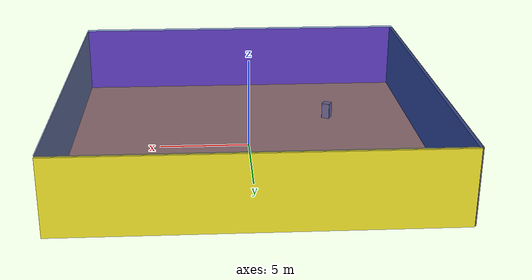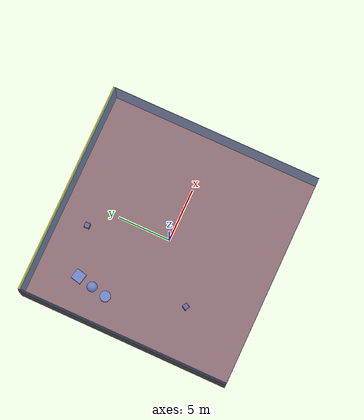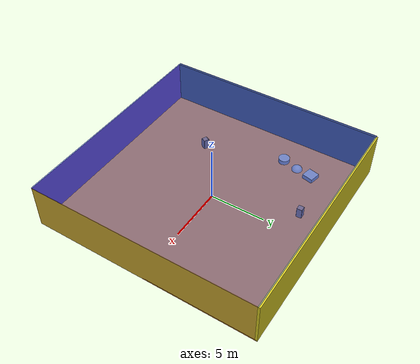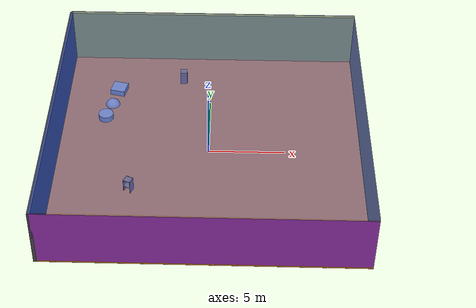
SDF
<sdf version="1.4">
 <world name="default">
  <physics type="ode">
   <max_step_size>0.001</max_step_size>
   <real_time_factor>1</real_time_factor>
   <real_time_update_rate>1000</real_time_update_rate>
   <gravity>0 0 -9.8</gravity>
  </physics>
  <scene><ambient>0.4 0.4 0.4 1</ambient><background>0.7 0.7 0.7 1</background><shadows>1</shadows></scene>
  <model name="Surrounding">
   <static>1</static>
   <link name="Ceiling">
    <collision name="Ceiling_Collision"><geometry><box><size>20 20 0.1</size></box></geometry></collision>
    <visual name="Ceiling_Visual">
     <geometry><box><size>20 20 0.1</size></box></geometry>
     <material>
      <script><uri>file://media/materials/scripts/gazebo.material</uri><name>Gazebo/BlueTransparent</name></script>
     </material>
    </visual>
    <pose>0 0 4.05 0 0 0</pose>
   </link>
   <link name="Wall_South">
    <collision name="Wall_South_Collision">
     <geometry><box><size>20 0 4</size></box></geometry>
     <pose>0 0 2 0 -0 0</pose>
    </collision>
    <visual name="Wall_South_Visual">
     <pose>0 0 2 0 -0 0</pose>
     <geometry><box><size>20 0 4</size></box></geometry>
     <material>
      <script><uri>file://media/materials/scripts/gazebo.material</uri><name>Gazebo/Purple</name></script>
     </material>
    </visual>
    <velocity_decay><linear>0</linear><angular>0</angular></velocity_decay>
    <pose>0 -10 0 0 -0 0</pose>
   </link>
   <link name="Wall_East">
    <collision name="Wall_21_Collision">
     <geometry><box><size>20 0 4</size></box></geometry>
     <pose>0 0 2 0 -0 0</pose>
    </collision>
    <visual name="Wall_21_Visual">
     <pose>0 0 2 0 -0 0</pose>
     <geometry><box><size>20 0 4</size></box></geometry>
     <material>
      <script><uri>file://media/materials/scripts/gazebo.material</uri><name>Gazebo/Gold</name></script>
     </material>
    </visual>
    <velocity_decay><linear>0</linear><angular>0</angular></velocity_decay>
    <pose>10 0 0 0 -0 1.5708</pose>
   </link>
   <link name="Wall_North">
    <collision name="Wall_22_Collision">
     <geometry><box><size>20 0.2 4</size></box></geometry>
     <pose>0 0 2 0 -0 0</pose>
    </collision>
    <visual name="Wall_22_Visual">
     <pose>0 0 2 0 -0 0</pose>
     <geometry><box><size>20 0.2 4</size></box></geometry>
     <material>
      <script><uri>file://media/materials/scripts/gazebo.material</uri><name>Gazebo/YellowGlow</name></script>
     </material>
    </visual>
    <velocity_decay><linear>0</linear><angular>0</angular></velocity_decay>
    <pose>0 10 0 0 -0 0</pose>
   </link>
   <link name="Wall_West">
    <collision name="Wall_23_Collision">
     <geometry><box><size>20 0.2 4</size></box></geometry>
     <pose>0 0 2 0 -0 0</pose>
    </collision>
    <visual name="Wall_23_Visual">
     <pose>0 0 2 0 -0 0</pose>
     <geometry><box><size>20 0.2 4</size></box></geometry>
     <material>
      <script><uri>file://media/materials/scripts/gazebo.material</uri><name>Gazebo/Road</name></script>
     </material>
    </visual>
    <velocity_decay><linear>0</linear><angular>0</angular></velocity_decay>
    <pose>-10 0 0 0 0 -1.5708</pose>
   </link>
   <link name="Ground_link">
    <collision name="collision">
     <pose>0 0 .05 0 -0 0</pose>
     <geometry><box><size>20 20 0.1</size></box></geometry>
    </collision>
    <visual name="visual">
     <pose>0 0 .05 0 -0 0</pose>
     <geometry><box><size>20 20 0.1</size></box></geometry>
     <material>
      <script><uri>file://media/materials/scripts/gazebo.material</uri><name>Gazebo/Orange</name></script>
     </material>
    </visual>
   </link>
   <static>1</static>
  </model>
  <spherical_coordinates>
   <surface_model>EARTH_WGS84</surface_model>
   <latitude_deg>0</latitude_deg>
   <longitude_deg>0</longitude_deg>
   <elevation>0</elevation>
   <heading_deg>0</heading_deg>
  </spherical_coordinates>
  <light name="lightball_0" type="diffuse">
   <diffuse>0.8 0.8 0.8 1</diffuse>
   <specular>0.2 0.2 0.2 1</specular>
   <attenuation>
    <range>100</range>
    <constant>0.7</constant>
    <linear>0.01</linear>
    <quadratic>0.001</quadratic>
   </attenuation>
   <direction>-0.5 0.1 -0.9</direction>
   <pose>3.41797145517 7.80772755268 2.47630922924 0 0 0</pose>
  </light>
  <light name="lightball_1" type="diffuse">
   <diffuse>0.8 0.8 0.8 1</diffuse>
   <specular>0.2 0.2 0.2 1</specular>
   <attenuation>
    <range>100</range>
    <constant>0.7</constant>
    <linear>0.01</linear>
    <quadratic>0.001</quadratic>
   </attenuation>
   <direction>-0.5 0.1 -0.9</direction>
   <pose>-7.22007605363 8.08333490899 0.823942951576 0 0 0</pose>
  </light>
  <light name="lightball_2" type="diffuse">
   <diffuse>0.8 0.8 0.8 1</diffuse>
   <specular>0.2 0.2 0.2 1</specular>
   <attenuation>
    <range>100</range>
    <constant>0.7</constant>
    <linear>0.01</linear>
    <quadratic>0.001</quadratic>
   </attenuation>
   <direction>-0.5 0.1 -0.9</direction>
   <pose>-5.623256386 5.40475998871 1.95972404686 0 0 0</pose>
  </light>
  <light name="lightball_3" type="diffuse">
   <diffuse>0.8 0.8 0.8 1</diffuse>
   <specular>0.2 0.2 0.2 1</specular>
   <attenuation>
    <range>100</range>
    <constant>0.7</constant>
    <linear>0.01</linear>
    <quadratic>0.001</quadratic>
   </attenuation>
   <direction>-0.5 0.1 -0.9</direction>
   <pose>6.48337079213 3.64898623206 3.12704744353 0 0 0</pose>
  </light>
  <light name="lightball_4" type="diffuse">
   <diffuse>0.8 0.8 0.8 1</diffuse>
   <specular>0.2 0.2 0.2 1</specular>
   <attenuation>
    <range>100</range>
    <constant>0.7</constant>
    <linear>0.01</linear>
    <quadratic>0.001</quadratic>
   </attenuation>
   <direction>-0.5 0.1 -0.9</direction>
   <pose>-6.94330348166 -9.11422612507 2.06602119952 0 0 0</pose>
  </light>
  <light name="lightball_5" type="diffuse">
   <diffuse>0.8 0.8 0.8 1</diffuse>
   <specular>0.2 0.2 0.2 1</specular>
   <attenuation>
    <range>100</range>
    <constant>0.7</constant>
    <linear>0.01</linear>
    <quadratic>0.001</quadratic>
   </attenuation>
   <direction>-0.5 0.1 -0.9</direction>
   <pose>2.77265973444 -9.09152200442 0.927880702887 0 0 0</pose>
  </light>
  <light name="lightball_6" type="diffuse">
   <diffuse>0.8 0.8 0.8 1</diffuse>
   <specular>0.2 0.2 0.2 1</specular>
   <attenuation>
    <range>100</range>
    <constant>0.7</constant>
    <linear>0.01</linear>
    <quadratic>0.001</quadratic>
   </attenuation>
   <direction>-0.5 0.1 -0.9</direction>
   <pose>-5.7693487748 -2.06303626488 3.78582408447 0 0 0</pose>
  </light>
  <include>
   <uri>model://textured_shapes</uri>
   <pose>-6.75569380897 4.59469223268 0 0 0 2.92027367097</pose>
  </include>
  <include><uri>model://cabinet</uri><pose>-4.96212539975 -3.86772604295 0 0 0 1.11690799794</pose></include>
  <include><uri>model://cabinet</uri><pose>-1.95506727041 7.28301590383 0 0 0 0.0279036499748</pose></include>
 </world>
</sdf>

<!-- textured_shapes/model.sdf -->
<sdf version="1.6">
  <model name="textured_shapes">
    <pose>0 0 0.5 0 0 0</pose>
    <link name="box">
      <pose>0 -1.5 0 0 0 0</pose>
      <collision name="collision">
        <geometry>
          <box>
            <size>1 1 1</size>
          </box>
        </geometry>
      </collision>
      <visual name="visual">
        <geometry>
          <box>
            <size>1 1 1</size>
          </box>
        </geometry>
        <material>
          <script>
            <uri>model://../model_source/models/textured_shapes/materials/scripts</uri>
            <uri>model://../model_source/models/textured_shapes/materials/textures</uri>
            <name>TexturedShape/Squares</name>
          </script>
        </material>
      </visual>
    </link>
    <link name="sphere">
      <collision name="collision">
        <geometry>
          <sphere>
            <radius>0.5</radius>
          </sphere>
        </geometry>
      </collision>
      <visual name="visual">
        <geometry>
          <sphere>
            <radius>0.5</radius>
          </sphere>
        </geometry>
        <material>
          <script>
            <uri>model://../model_source/models/textured_shapes/materials/scripts</uri>
            <uri>model://../model_source/models/textured_shapes/materials/textures</uri>
            <name>TexturedShape/Squares</name>
          </script>
        </material>
      </visual>
    </link>
    <link name="cylinder">
      <pose>0 1.5 0 0 0 0</pose>
      <collision name="collision">
        <geometry>
          <cylinder>
            <radius>0.5</radius>
            <length>1</length>
          </cylinder>
        </geometry>
      </collision>
      <visual name="visual">
        <geometry>
          <cylinder>
            <radius>0.5</radius>
            <length>1</length>
          </cylinder>
        </geometry>
        <material>
          <script>
            <uri>model://../model_source/models/textured_shapes/materials/scripts</uri>
            <uri>model://../model_source/models/textured_shapes/materials/textures</uri>
            <name>TexturedShape/Squares</name>
          </script>
        </material>
      </visual>
    </link>
  </model>
</sdf>

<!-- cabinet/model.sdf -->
<sdf version="1.5">
  <model name="cabinet">
    <static>true</static>
    <link name="cabinet_bottom_plate">
      <inertial>
        <pose>0 0 -1 0 0 0</pose>
        <inertia>
          <ixx>2.050000</ixx>
          <ixy>0</ixy>
          <ixz>0</ixz>
          <iyy>2.050000</iyy>
          <iyz>0</iyz>
          <izz>2.050000</izz>
        </inertia>
        <mass>25.000000</mass>
      </inertial>
      <collision name="cabinet_bottom_plate_geom">
        <pose>0 0 0.010000 0 0 0</pose>
        <geometry>
          <box>
            <size>0.450000 0.450000 0.020000</size>
          </box>
        </geometry>
      </collision>
      <visual name="cabinet_bottom_plate_geom_visual">
        <pose>0 0 0.010000 0 0 0</pose>
        <geometry>
          <box>
            <size>0.450000 0.450000 0.020000</size>
          </box>
        </geometry>
        <material>
          <script>
            <uri>model://media/materials/scripts/gazebo.material</uri>
            <name>Gazebo/Wood</name>
          </script>
        </material>
      </visual>
      <collision name="cabinet_bottom_plate_geom_cabinet_back_plate">
        <pose>0.235000 0 0.510000 0 0 0</pose>
        <geometry>
          <box>
            <size>0.020000 0.450000 1.020000</size>
          </box>
        </geometry>
      </collision>
      <visual name="cabinet_bottom_plate_geom_cabinet_back_plate_visual">
        <pose>0.235000 0 0.510000 0 0 0</pose>
        <geometry>
          <box>
            <size>0.020000 0.450000 1.020000</size>
          </box>
        </geometry>
        <material>
          <script>
            <uri>model://media/materials/scripts/gazebo.material</uri>
            <name>Gazebo/Wood</name>
          </script>
        </material>
      </visual>
      <collision name="cabinet_bottom_plate_geom_cabinet_left_plate">
        <pose>0 0.235000 0.510000 0 0 0</pose>
        <geometry>
          <box>
            <size>0.450000 0.020000 1.020000</size>
          </box>
        </geometry>
      </collision>
      <visual name="cabinet_bottom_plate_geom_cabinet_left_plate_visual">
        <pose>0 0.235000 0.510000 0 0 0</pose>
        <geometry>
          <box>
            <size>0.450000 0.020000 1.020000</size>
          </box>
        </geometry>
        <material>
          <script>
            <uri>model://media/materials/scripts/gazebo.material</uri>
            <name>Gazebo/Wood</name>
          </script>
        </material>
      </visual>
      <collision name="cabinet_bottom_plate_geom_cabinet_middle_plate">
        <pose>0 0 0.510000 0 0 0</pose>
        <geometry>
          <box>
            <size>0.450000 0.450000 0.020000</size>
          </box>
        </geometry>
      </collision>
      <visual name="cabinet_bottom_plate_geom_cabinet_middle_plate_visual">
        <pose>0 0 0.510000 0 0 0</pose>
        <geometry>
          <box>
            <size>0.450000 0.450000 0.020000</size>
          </box>
        </geometry>
        <material>
          <script>
            <uri>model://media/materials/scripts/gazebo.material</uri>
            <name>Gazebo/Wood</name>
          </script>
        </material>
      </visual>
      <collision name="cabinet_bottom_plate_geom_cabinet_right_plate">
        <pose>0 -0.235000 0.510000 0 0 0</pose>
        <geometry>
          <box>
            <size>0.450000 0.020000 1.020000</size>
          </box>
        </geometry>
      </collision>
      <visual name="cabinet_bottom_plate_geom_cabinet_right_plate_visual">
        <pose>0 -0.235000 0.510000 0 0 0</pose>
        <geometry>
          <box>
            <size>0.450000 0.020000 1.020000</size>
          </box>
        </geometry>
        <material>
          <script>
            <uri>model://media/materials/scripts/gazebo.material</uri>
            <name>Gazebo/Wood</name>
          </script>
        </material>
      </visual>
      <collision name="cabinet_bottom_plate_geom_cabinet_top_plate">
        <pose>0 0 1.010000 0 0 0</pose>
        <geometry>
          <box>
            <size>0.450000 0.450000 0.020000</size>
          </box>
        </geometry>
      </collision>
      <visual name="cabinet_bottom_plate_geom_cabinet_top_plate_visual">
        <pose>0 0 1.010000 0 0 0</pose>
        <geometry>
          <box>
            <size>0.450000 0.450000 0.020000</size>
          </box>
        </geometry>
        <material>
          <script>
            <uri>model://media/materials/scripts/gazebo.material</uri>
            <name>Gazebo/Wood</name>
          </script>
        </material>
      </visual>
    </link>
  </model>
</sdf>
